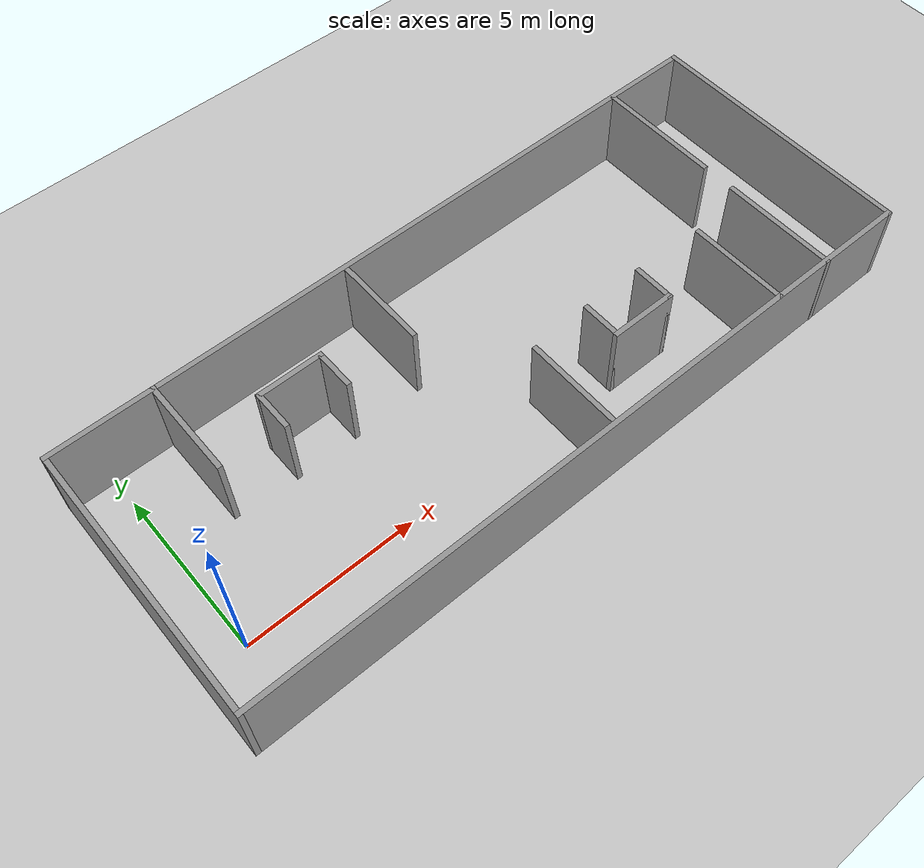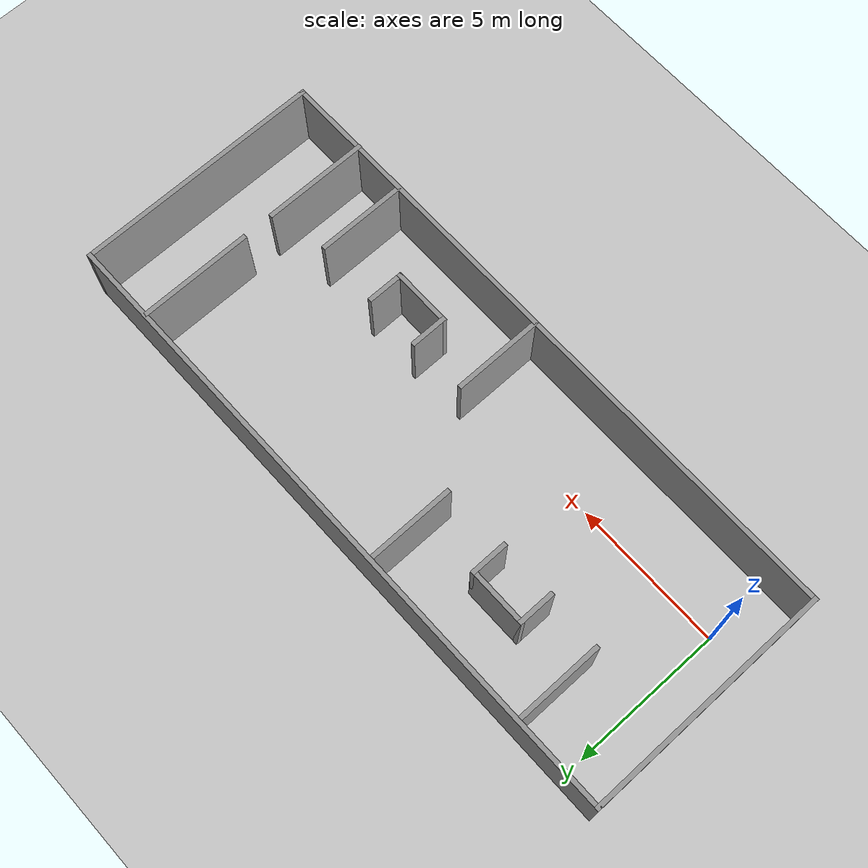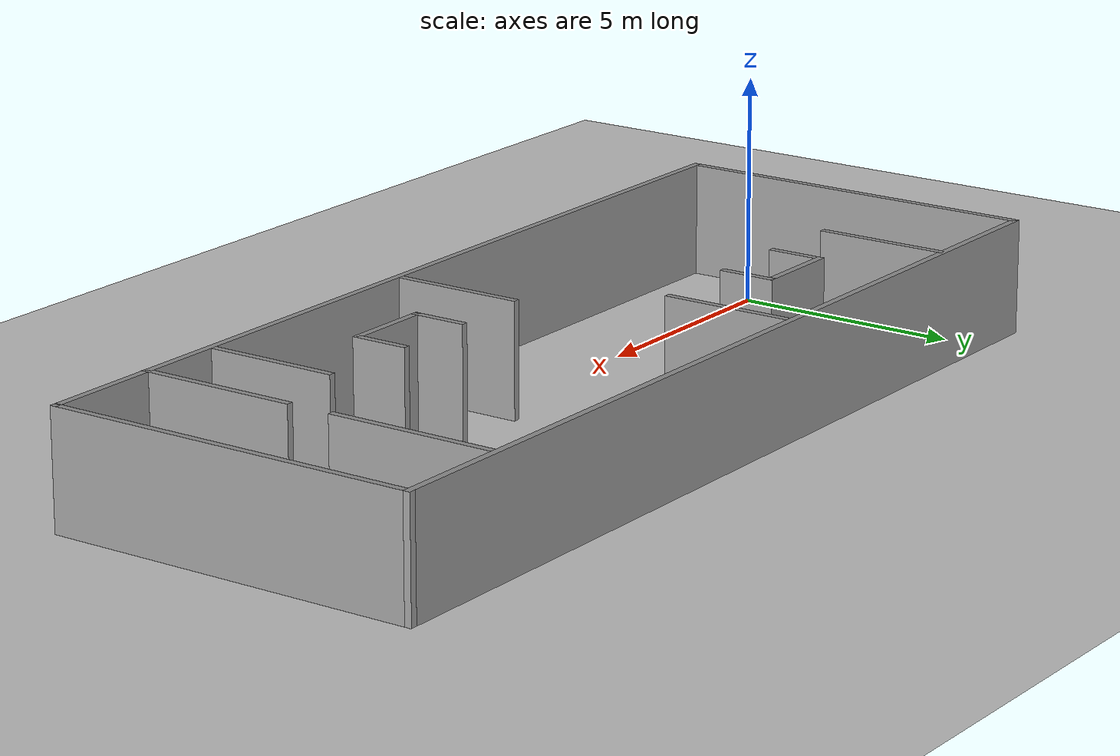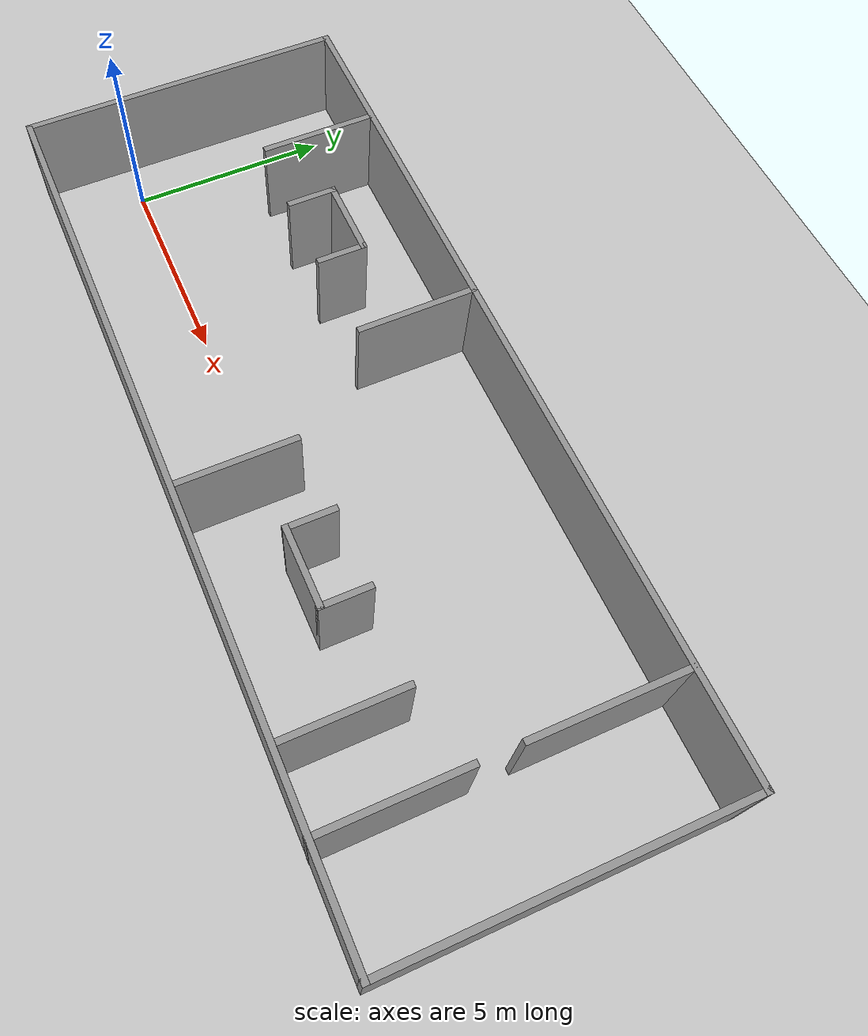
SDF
<?xml version='1.0'?>
<sdf version='1.6'>
  <world name='default'>
    <light name='sun' type='directional'>
      <cast_shadows>1</cast_shadows>
      <pose frame=''>0 0 10 0 -0 0</pose>
      <diffuse>0.8 0.8 0.8 1</diffuse>
      <specular>0.2 0.2 0.2 1</specular>
      <attenuation>
        <range>1000</range>
        <constant>0.9</constant>
        <linear>0.01</linear>
        <quadratic>0.001</quadratic>
      </attenuation>
      <direction>-0.5 0.1 -0.9</direction>
    </light>
    <model name='ground_plane'>
      <static>1</static>
      <link name='link'>
        <collision name='collision'>
          <geometry>
            <plane>
              <normal>0 0 1</normal>
              <size>100 100</size>
            </plane>
          </geometry>
          <surface>
            <contact>
              <collide_bitmask>65535</collide_bitmask>
              <ode/>
            </contact>
            <friction>
              <ode>
                <mu>100</mu>
                <mu2>50</mu2>
              </ode>
              <torsional>
                <ode/>
              </torsional>
            </friction>
            <bounce/>
          </surface>
          <max_contacts>10</max_contacts>
        </collision>
        <visual name='visual'>
          <cast_shadows>0</cast_shadows>
          <geometry>
            <plane>
              <normal>0 0 1</normal>
              <size>100 100</size>
            </plane>
          </geometry>
          <material>
            <script>
              <uri>file://media/materials/scripts/gazebo.material</uri>
              <name>Gazebo/Grey</name>
            </script>
          </material>
        </visual>
        <self_collide>0</self_collide>
        <enable_wind>0</enable_wind>
        <kinematic>0</kinematic>
      </link>
    </model>
    <gravity>0 0 -9.8</gravity>
    <magnetic_field>6e-06 2.3e-05 -4.2e-05</magnetic_field>
    <atmosphere type='adiabatic'/>
    <physics name='default_physics' default='0' type='ode'>
      <max_step_size>0.001</max_step_size>
      <real_time_factor>1</real_time_factor>
      <real_time_update_rate>1000</real_time_update_rate>
    </physics>
    <scene>
      <ambient>0.4 0.4 0.4 1</ambient>
      <background>0.7 0.7 0.7 1</background>
      <shadows>1</shadows>
    </scene>
    <audio>
      <device>default</device>
    </audio>
    <wind/>
    <spherical_coordinates>
      <surface_model>EARTH_WGS84</surface_model>
      <latitude_deg>0</latitude_deg>
      <longitude_deg>0</longitude_deg>
      <elevation>0</elevation>
      <heading_deg>0</heading_deg>
    </spherical_coordinates>
    <model name='train22'>
      <pose frame=''>9.31874 1.84353 0 0 -0 0</pose>
      <link name='Wall_0'>
        <collision name='Wall_0_Collision'>
          <geometry>
            <box>
              <size>21.25 0.15 2.5</size>
            </box>
          </geometry>
          <pose frame=''>0 0 1.25 0 -0 0</pose>
          <max_contacts>10</max_contacts>
          <surface>
            <contact>
              <ode/>
            </contact>
            <bounce/>
            <friction>
              <torsional>
                <ode/>
              </torsional>
              <ode/>
            </friction>
          </surface>
        </collision>
        <visual name='Wall_0_Visual'>
          <pose frame=''>0 0 1.25 0 -0 0</pose>
          <geometry>
            <box>
              <size>21.25 0.15 2.5</size>
            </box>
          </geometry>
          <material>
            <script>
              <uri>file://media/materials/scripts/gazebo.material</uri>
              <name>Gazebo/Grey</name>
            </script>
            <ambient>1 1 1 1</ambient>
          </material>
          <meta>
            <layer>0</layer>
          </meta>
        </visual>
        <pose frame=''>0 -4.04548 0 0 -0 0</pose>
        <self_collide>0</self_collide>
        <enable_wind>0</enable_wind>
        <kinematic>0</kinematic>
      </link>
      <link name='Wall_12'>
        <collision name='Wall_12_Collision'>
          <geometry>
            <box>
              <size>3 0.15 2.5</size>
            </box>
          </geometry>
          <pose frame=''>0 0 1.25 0 -0 0</pose>
          <max_contacts>10</max_contacts>
          <surface>
            <contact>
              <ode/>
            </contact>
            <bounce/>
            <friction>
              <torsional>
                <ode/>
              </torsional>
              <ode/>
            </friction>
          </surface>
        </collision>
        <visual name='Wall_12_Visual'>
          <pose frame=''>0 0 1.25 0 -0 0</pose>
          <geometry>
            <box>
              <size>3 0.15 2.5</size>
            </box>
          </geometry>
          <material>
            <script>
              <uri>file://media/materials/scripts/gazebo.material</uri>
              <name>Gazebo/Grey</name>
            </script>
            <ambient>1 1 1 1</ambient>
          </material>
          <meta>
            <layer>0</layer>
          </meta>
        </visual>
        <pose frame=''>-1.70399 2.62869 0 0 -0 1.5708</pose>
        <self_collide>0</self_collide>
        <enable_wind>0</enable_wind>
        <kinematic>0</kinematic>
      </link>
      <link name='Wall_2'>
        <collision name='Wall_2_Collision'>
          <geometry>
            <box>
              <size>8.25 0.15 2.5</size>
            </box>
          </geometry>
          <pose frame=''>0 0 1.25 0 -0 0</pose>
          <max_contacts>10</max_contacts>
          <surface>
            <contact>
              <ode/>
            </contact>
            <bounce/>
            <friction>
              <torsional>
                <ode/>
              </torsional>
              <ode/>
            </friction>
          </surface>
        </collision>
        <visual name='Wall_2_Visual'>
          <pose frame=''>0 0 1.25 0 -0 0</pose>
          <geometry>
            <box>
              <size>8.25 0.15 2.5</size>
            </box>
          </geometry>
          <material>
            <script>
              <uri>file://media/materials/scripts/gazebo.material</uri>
              <name>Gazebo/Grey</name>
            </script>
            <ambient>1 1 1 1</ambient>
          </material>
          <meta>
            <layer>0</layer>
          </meta>
        </visual>
        <pose frame=''>10.55 0.004518 0 0 -0 1.5708</pose>
        <self_collide>0</self_collide>
        <enable_wind>0</enable_wind>
        <kinematic>0</kinematic>
      </link>
      <link name='Wall_24'>
        <collision name='Wall_24_Collision'>
          <geometry>
            <box>
              <size>2 0.15 2.5</size>
            </box>
          </geometry>
          <pose frame=''>0 0 1.25 0 -0 0</pose>
          <max_contacts>10</max_contacts>
          <surface>
            <contact>
              <ode/>
            </contact>
            <bounce/>
            <friction>
              <torsional>
                <ode/>
              </torsional>
              <ode/>
            </friction>
          </surface>
        </collision>
        <visual name='Wall_24_Visual'>
          <pose frame=''>0 0 1.25 0 -0 0</pose>
          <geometry>
            <box>
              <size>2 0.15 2.5</size>
            </box>
          </geometry>
          <material>
            <script>
              <uri>file://media/materials/scripts/gazebo.material</uri>
              <name>Gazebo/Grey</name>
            </script>
            <ambient>1 1 1 1</ambient>
          </material>
          <meta>
            <layer>0</layer>
          </meta>
        </visual>
        <pose frame=''>-4.77899 2.20369 0 0 -0 0</pose>
        <self_collide>0</self_collide>
        <enable_wind>0</enable_wind>
        <kinematic>0</kinematic>
      </link>
      <link name='Wall_27'>
        <collision name='Wall_27_Collision'>
          <geometry>
            <box>
              <size>1.25 0.15 2.5</size>
            </box>
          </geometry>
          <pose frame=''>0 0 1.25 0 -0 0</pose>
          <max_contacts>10</max_contacts>
          <surface>
            <contact>
              <ode/>
            </contact>
            <bounce/>
            <friction>
              <torsional>
                <ode/>
              </torsional>
              <ode/>
            </friction>
          </surface>
        </collision>
        <visual name='Wall_27_Visual'>
          <pose frame=''>0 0 1.25 0 -0 0</pose>
          <geometry>
            <box>
              <size>1.25 0.15 2.5</size>
            </box>
          </geometry>
          <material>
            <script>
              <uri>file://media/materials/scripts/gazebo.material</uri>
              <name>Gazebo/Grey</name>
            </script>
            <ambient>1 1 1 1</ambient>
          </material>
          <meta>
            <layer>0</layer>
          </meta>
        </visual>
        <pose frame=''>-5.70399 1.65369 0 0 -0 -1.5708</pose>
        <self_collide>0</self_collide>
        <enable_wind>0</enable_wind>
        <kinematic>0</kinematic>
      </link>
      <link name='Wall_29'>
        <collision name='Wall_29_Collision'>
          <geometry>
            <box>
              <size>1.25 0.15 2.5</size>
            </box>
          </geometry>
          <pose frame=''>0 0 1.25 0 -0 0</pose>
          <max_contacts>10</max_contacts>
          <surface>
            <contact>
              <ode/>
            </contact>
            <bounce/>
            <friction>
              <torsional>
                <ode/>
              </torsional>
              <ode/>
            </friction>
          </surface>
        </collision>
        <visual name='Wall_29_Visual'>
          <pose frame=''>0 0 1.25 0 -0 0</pose>
          <geometry>
            <box>
              <size>1.25 0.15 2.5</size>
            </box>
          </geometry>
          <material>
            <script>
              <uri>file://media/materials/scripts/gazebo.material</uri>
              <name>Gazebo/Grey</name>
            </script>
            <ambient>1 1 1 1</ambient>
          </material>
          <meta>
            <layer>0</layer>
          </meta>
        </visual>
        <pose frame=''>-3.85399 1.65369 0 0 -0 -1.5708</pose>
        <self_collide>0</self_collide>
        <enable_wind>0</enable_wind>
        <kinematic>0</kinematic>
      </link>
      <link name='Wall_3'>
        <collision name='Wall_3_Collision'>
          <geometry>
            <box>
              <size>21.25 0.15 2.5</size>
            </box>
          </geometry>
          <pose frame=''>0 0 1.25 0 -0 0</pose>
          <max_contacts>10</max_contacts>
          <surface>
            <contact>
              <ode/>
            </contact>
            <bounce/>
            <friction>
              <torsional>
                <ode/>
              </torsional>
              <ode/>
            </friction>
          </surface>
        </collision>
        <visual name='Wall_3_Visual'>
          <pose frame=''>0 0 1.25 0 -0 0</pose>
          <geometry>
            <box>
              <size>21.25 0.15 2.5</size>
            </box>
          </geometry>
          <material>
            <script>
              <uri>file://media/materials/scripts/gazebo.material</uri>
              <name>Gazebo/Grey</name>
            </script>
            <ambient>1 1 1 1</ambient>
          </material>
          <meta>
            <layer>0</layer>
          </meta>
        </visual>
        <pose frame=''>0 4.05452 0 0 -0 3.14159</pose>
        <self_collide>0</self_collide>
        <enable_wind>0</enable_wind>
        <kinematic>0</kinematic>
      </link>
      <link name='Wall_35'>
        <collision name='Wall_35_Collision'>
          <geometry>
            <box>
              <size>3 0.15 2.5</size>
            </box>
          </geometry>
          <pose frame=''>0 0 1.25 0 -0 0</pose>
          <max_contacts>10</max_contacts>
          <surface>
            <contact>
              <ode/>
            </contact>
            <bounce/>
            <friction>
              <torsional>
                <ode/>
              </torsional>
              <ode/>
            </friction>
          </surface>
        </collision>
        <visual name='Wall_35_Visual'>
          <pose frame=''>0 0 1.25 0 -0 0</pose>
          <geometry>
            <box>
              <size>3 0.15 2.5</size>
            </box>
          </geometry>
          <material>
            <script>
              <uri>file://media/materials/scripts/gazebo.material</uri>
              <name>Gazebo/Grey</name>
            </script>
            <ambient>1 1 1 1</ambient>
          </material>
          <meta>
            <layer>0</layer>
          </meta>
        </visual>
        <pose frame=''>0.335367 -2.59281 0 0 -0 1.5708</pose>
        <self_collide>0</self_collide>
        <enable_wind>0</enable_wind>
        <kinematic>0</kinematic>
      </link>
      <link name='Wall_37'>
        <collision name='Wall_37_Collision'>
          <geometry>
            <box>
              <size>3 0.15 2.5</size>
            </box>
          </geometry>
          <pose frame=''>0 0 1.25 0 -0 0</pose>
          <max_contacts>10</max_contacts>
          <surface>
            <contact>
              <ode/>
            </contact>
            <bounce/>
            <friction>
              <torsional>
                <ode/>
              </torsional>
              <ode/>
            </friction>
          </surface>
        </collision>
        <visual name='Wall_37_Visual'>
          <pose frame=''>0 0 1.25 0 -0 0</pose>
          <geometry>
            <box>
              <size>3 0.15 2.5</size>
            </box>
          </geometry>
          <material>
            <script>
              <uri>file://media/materials/scripts/gazebo.material</uri>
              <name>Gazebo/Grey</name>
            </script>
            <ambient>1 1 1 1</ambient>
          </material>
          <meta>
            <layer>0</layer>
          </meta>
        </visual>
        <pose frame=''>6.18537 -2.59281 0 0 -0 -1.5708</pose>
        <self_collide>0</self_collide>
        <enable_wind>0</enable_wind>
        <kinematic>0</kinematic>
      </link>
      <link name='Wall_4'>
        <collision name='Wall_4_Collision'>
          <geometry>
            <box>
              <size>8.25 0.15 2.5</size>
            </box>
          </geometry>
          <pose frame=''>0 0 1.25 0 -0 0</pose>
          <max_contacts>10</max_contacts>
          <surface>
            <contact>
              <ode/>
            </contact>
            <bounce/>
            <friction>
              <torsional>
                <ode/>
              </torsional>
              <ode/>
            </friction>
          </surface>
        </collision>
        <visual name='Wall_4_Visual'>
          <pose frame=''>0 0 1.25 0 -0 0</pose>
          <geometry>
            <box>
              <size>8.25 0.15 2.5</size>
            </box>
          </geometry>
          <material>
            <script>
              <uri>file://media/materials/scripts/gazebo.material</uri>
              <name>Gazebo/Grey</name>
            </script>
            <ambient>1 1 1 1</ambient>
          </material>
          <meta>
            <layer>0</layer>
          </meta>
        </visual>
        <pose frame=''>-10.55 0.004518 0 0 -0 -1.5708</pose>
        <self_collide>0</self_collide>
        <enable_wind>0</enable_wind>
        <kinematic>0</kinematic>
      </link>
      <link name='Wall_44'>
        <collision name='Wall_44_Collision'>
          <geometry>
            <box>
              <size>2 0.15 2.5</size>
            </box>
          </geometry>
          <pose frame=''>0 0 1.25 0 -0 0</pose>
          <max_contacts>10</max_contacts>
          <surface>
            <contact>
              <ode/>
            </contact>
            <bounce/>
            <friction>
              <torsional>
                <ode/>
              </torsional>
              <ode/>
            </friction>
          </surface>
        </collision>
        <visual name='Wall_44_Visual'>
          <pose frame=''>0 0 1.25 0 -0 0</pose>
          <geometry>
            <box>
              <size>2 0.15 2.5</size>
            </box>
          </geometry>
          <material>
            <script>
              <uri>file://media/materials/scripts/gazebo.material</uri>
              <name>Gazebo/Grey</name>
            </script>
            <ambient>1 1 1 1</ambient>
          </material>
          <meta>
            <layer>0</layer>
          </meta>
        </visual>
        <pose frame=''>3.11037 -2.16781 0 0 -0 0</pose>
        <self_collide>0</self_collide>
        <enable_wind>0</enable_wind>
        <kinematic>0</kinematic>
      </link>
      <link name='Wall_47'>
        <collision name='Wall_47_Collision'>
          <geometry>
            <box>
              <size>1.25 0.15 2.5</size>
            </box>
          </geometry>
          <pose frame=''>0 0 1.25 0 -0 0</pose>
          <max_contacts>10</max_contacts>
          <surface>
            <contact>
              <ode/>
            </contact>
            <bounce/>
            <friction>
              <torsional>
                <ode/>
              </torsional>
              <ode/>
            </friction>
          </surface>
        </collision>
        <visual name='Wall_47_Visual'>
          <pose frame=''>0 0 1.25 0 -0 0</pose>
          <geometry>
            <box>
              <size>1.25 0.15 2.5</size>
            </box>
          </geometry>
          <material>
            <script>
              <uri>file://media/materials/scripts/gazebo.material</uri>
              <name>Gazebo/Grey</name>
            </script>
            <ambient>1 1 1 1</ambient>
          </material>
          <meta>
            <layer>0</layer>
          </meta>
        </visual>
        <pose frame=''>2.18537 -1.61781 0 0 -0 1.5708</pose>
        <self_collide>0</self_collide>
        <enable_wind>0</enable_wind>
        <kinematic>0</kinematic>
      </link>
      <link name='Wall_49'>
        <collision name='Wall_49_Collision'>
          <geometry>
            <box>
              <size>1.25 0.15 2.5</size>
            </box>
          </geometry>
          <pose frame=''>0 0 1.25 0 -0 0</pose>
          <max_contacts>10</max_contacts>
          <surface>
            <contact>
              <ode/>
            </contact>
            <bounce/>
            <friction>
              <torsional>
                <ode/>
              </torsional>
              <ode/>
            </friction>
          </surface>
        </collision>
        <visual name='Wall_49_Visual'>
          <pose frame=''>0 0 1.25 0 -0 0</pose>
          <geometry>
            <box>
              <size>1.25 0.15 2.5</size>
            </box>
          </geometry>
          <material>
            <script>
              <uri>file://media/materials/scripts/gazebo.material</uri>
              <name>Gazebo/Grey</name>
            </script>
            <ambient>1 1 1 1</ambient>
          </material>
          <meta>
            <layer>0</layer>
          </meta>
        </visual>
        <pose frame=''>4.03537 -1.61781 0 0 -0 1.5708</pose>
        <self_collide>0</self_collide>
        <enable_wind>0</enable_wind>
        <kinematic>0</kinematic>
      </link>
      <link name='Wall_56'>
        <collision name='Wall_56_Collision'>
          <geometry>
            <box>
              <size>3.5 0.15 2.5</size>
            </box>
          </geometry>
          <pose frame=''>0 0 1.25 0 -0 0</pose>
          <max_contacts>10</max_contacts>
          <surface>
            <contact>
              <ode/>
            </contact>
            <bounce/>
            <friction>
              <torsional>
                <ode/>
              </torsional>
              <ode/>
            </friction>
          </surface>
        </collision>
        <visual name='Wall_56_Visual'>
          <pose frame=''>0 0 1.25 0 -0 0</pose>
          <geometry>
            <box>
              <size>3.5 0.15 2.5</size>
            </box>
          </geometry>
          <material>
            <script>
              <uri>file://media/materials/scripts/gazebo.material</uri>
              <name>Gazebo/Grey</name>
            </script>
            <ambient>1 1 1 1</ambient>
          </material>
          <meta>
            <layer>0</layer>
          </meta>
        </visual>
        <pose frame=''>8.00741 -2.37952 0 0 -0 1.5708</pose>
        <self_collide>0</self_collide>
        <enable_wind>0</enable_wind>
        <kinematic>0</kinematic>
      </link>
      <link name='Wall_59'>
        <collision name='Wall_59_Collision'>
          <geometry>
            <box>
              <size>3.75 0.15 2.5</size>
            </box>
          </geometry>
          <pose frame=''>0 0 1.25 0 -0 0</pose>
          <max_contacts>10</max_contacts>
          <surface>
            <contact>
              <ode/>
            </contact>
            <bounce/>
            <friction>
              <torsional>
                <ode/>
              </torsional>
              <ode/>
            </friction>
          </surface>
        </collision>
        <visual name='Wall_59_Visual'>
          <pose frame=''>0 0 1.25 0 -0 0</pose>
          <geometry>
            <box>
              <size>3.75 0.15 2.5</size>
            </box>
          </geometry>
          <material>
            <script>
              <uri>file://media/materials/scripts/gazebo.material</uri>
              <name>Gazebo/Grey</name>
            </script>
            <ambient>1 1 1 1</ambient>
          </material>
          <meta>
            <layer>0</layer>
          </meta>
        </visual>
        <pose frame=''>8.00741 2.19548 0 0 -0 1.5708</pose>
        <self_collide>0</self_collide>
        <enable_wind>0</enable_wind>
        <kinematic>0</kinematic>
      </link>
      <link name='Wall_9'>
        <collision name='Wall_9_Collision'>
          <geometry>
            <box>
              <size>3 0.15 2.5</size>
            </box>
          </geometry>
          <pose frame=''>0 0 1.25 0 -0 0</pose>
          <max_contacts>10</max_contacts>
          <surface>
            <contact>
              <ode/>
            </contact>
            <bounce/>
            <friction>
              <torsional>
                <ode/>
              </torsional>
              <ode/>
            </friction>
          </surface>
        </collision>
        <visual name='Wall_9_Visual'>
          <pose frame=''>0 0 1.25 0 -0 0</pose>
          <geometry>
            <box>
              <size>3 0.15 2.5</size>
            </box>
          </geometry>
          <material>
            <script>
              <uri>file://media/materials/scripts/gazebo.material</uri>
              <name>Gazebo/Grey</name>
            </script>
            <ambient>1 1 1 1</ambient>
          </material>
          <meta>
            <layer>0</layer>
          </meta>
        </visual>
        <pose frame=''>-7.55399 2.62869 0 0 -0 -1.5708</pose>
        <self_collide>0</self_collide>
        <enable_wind>0</enable_wind>
        <kinematic>0</kinematic>
      </link>
      <static>1</static>
    </model>
  </world>
</sdf>
